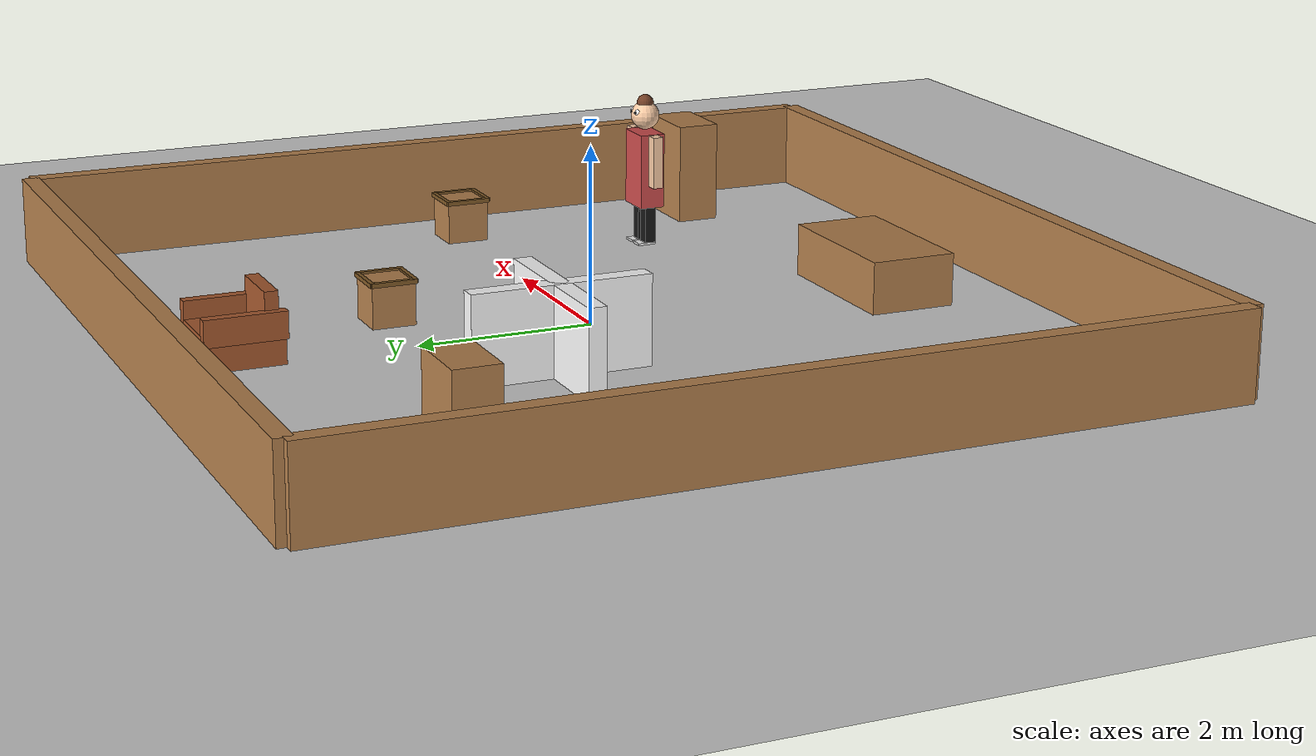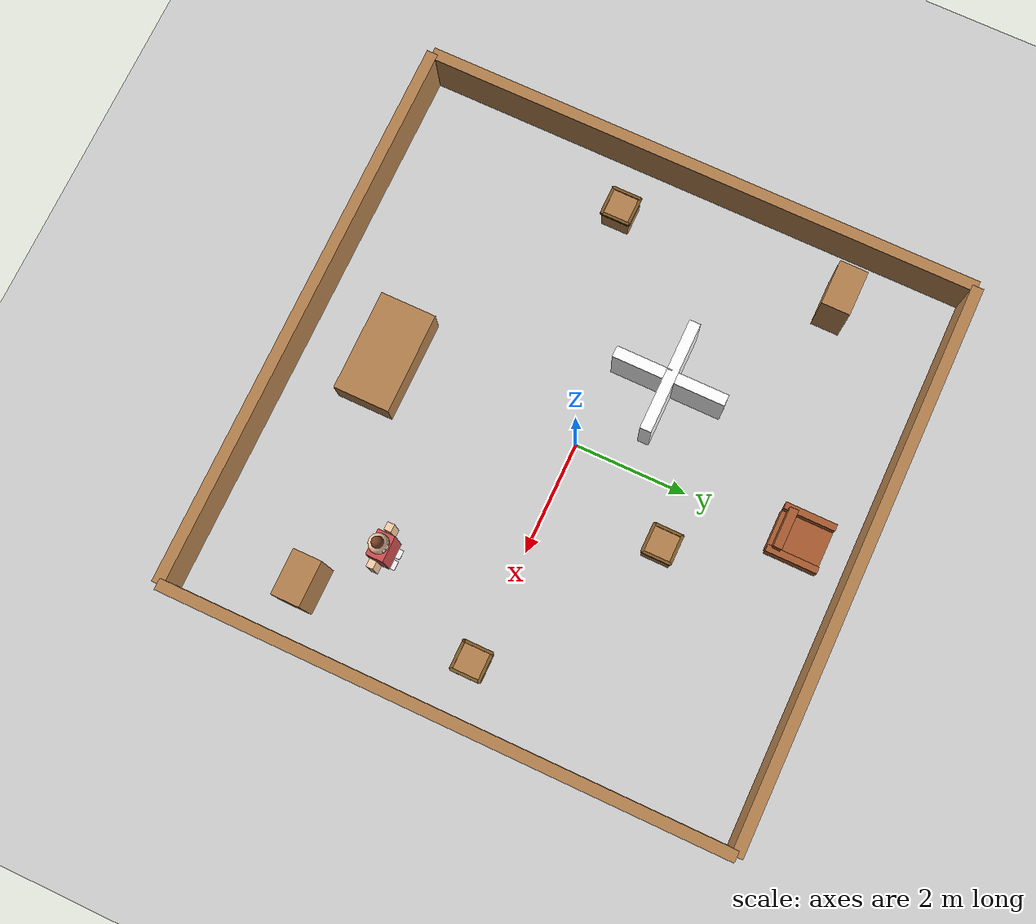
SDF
<?xml version="1.0"?>
<sdf version="1.6">
  <world name="10m_safe_world">

    <!-- 物理引擎配置（新增） -->
    <physics type="ode">
      <max_step_size>0.01</max_step_size>
      <real_time_update_rate>100</real_time_update_rate>
    </physics>

    <!-- 光照 -->
    <include>
      <uri>model://sun</uri>
    </include>

    <!-- 地面 10m×10m（添加摩擦参数） -->
    <model name="ground_plane">
      <static>true</static>
      <link name="link">
        <collision name="collision">
          <geometry>
            <plane>
              <normal>0 0 1</normal>
              <size>10 10</size>
            </plane>
          </geometry>
          <surface>
            <friction>
              <ode>
                <mu>1.0</mu>
                <mu2>1.0</mu2>
              </ode>
            </friction>
          </surface>
        </collision>
        <visual name="visual">
          <geometry>
            <plane>
              <normal>0 0 1</normal>
              <size>10 10</size>
            </plane>
          </geometry>
          <material>
            <script>
              <uri>file://media/materials/scripts/gazebo.material</uri>
              <name>Gazebo/Grey</name>
            </script>
          </material>
        </visual>
      </link>
    </model>

    <!-- 木质围墙（添加摩擦参数） -->
    <model name="fence">
      <static>true</static>
      <link name="link">
        <!-- 北墙 -->
        <collision name="n">
          <pose>0 5 0.5 0 0 0</pose>
          <geometry><box><size>10 0.2 1</size></box></geometry>
          <surface>
            <friction>
              <ode><mu>1.0</mu><mu2>1.0</mu2></ode>
            </friction>
          </surface>
        </collision>
        <visual name="nv">
          <pose>0 5 0.5 0 0 0</pose>
          <geometry><box><size>10 0.2 1</size></box></geometry>
          <material>
            <script>
              <uri>file://media/materials/scripts/gazebo.material</uri>
              <name>Gazebo/Wood</name>
            </script>
          </material>
        </visual>

        <!-- 南墙 -->
        <collision name="s">
          <pose>0 -5 0.5 0 0 0</pose>
          <geometry><box><size>10 0.2 1</size></box></geometry>
          <surface>
            <friction>
              <ode><mu>1.0</mu><mu2>1.0</mu2></ode>
            </friction>
          </surface>
        </collision>
        <visual name="sv">
          <pose>0 -5 0.5 0 0 0</pose>
          <geometry><box><size>10 0.2 1</size></box></geometry>
          <material>
            <script>
              <uri>file://media/materials/scripts/gazebo.material</uri>
              <name>Gazebo/Wood</name>
            </script>
          </material>
        </visual>

        <!-- 东墙 -->
        <collision name="e">
          <pose>5 0 0.5 0 0 0</pose>
          <geometry><box><size>0.2 10 1</size></box></geometry>
          <surface>
            <friction>
              <ode><mu>1.0</mu><mu2>1.0</mu2></ode>
            </friction>
          </surface>
        </collision>
        <visual name="ev">
          <pose>5 0 0.5 0 0 0</pose>
          <geometry><box><size>0.2 10 1</size></box></geometry>
          <material>
            <script>
              <uri>file://media/materials/scripts/gazebo.material</uri>
              <name>Gazebo/Wood</name>
            </script>
          </material>
        </visual>

        <!-- 西墙 -->
        <collision name="w">
          <pose>-5 0 0.5 0 0 0</pose>
          <geometry><box><size>0.2 10 1</size></box></geometry>
          <surface>
            <friction>
              <ode><mu>1.0</mu><mu2>1.0</mu2></ode>
            </friction>
          </surface>
        </collision>
        <visual name="wv">
          <pose>-5 0 0.5 0 0 0</pose>
          <geometry><box><size>0.2 10 1</size></box></geometry>
          <material>
            <script>
              <uri>file://media/materials/scripts/gazebo.material</uri>
              <name>Gazebo/Wood</name>
            </script>
          </material>
        </visual>
      </link>
    </model>

    <!-- ===================== 家具 ===================== -->

    <!-- 柜子1（添加摩擦） -->
    <model name="cab1">
      <static>true</static>
      <pose>-4 3 0.6 0 0 0</pose>
      <link name="link">
        <collision name="c">
          <geometry><box><size>0.8 0.5 1.2</size></box></geometry>
          <surface>
            <friction>
              <ode><mu>1.0</mu><mu2>1.0</mu2></ode>
            </friction>
          </surface>
        </collision>
        <visual name="v">
          <geometry><box><size>0.8 0.5 1.2</size></box></geometry>
          <material>
            <script>
              <uri>file://media/materials/scripts/gazebo.material</uri>
              <name>Gazebo/Wood</name>
            </script>
          </material>
        </visual>
      </link>
    </model>

    <!-- 柜子2（添加摩擦） -->
    <model name="cab2">
      <static>true</static>
      <pose>4 -3 0.6 0 0 0</pose>
      <link name="link">
        <collision name="c">
          <geometry><box><size>0.8 0.5 1.2</size></box></geometry>
          <surface>
            <friction>
              <ode><mu>1.0</mu><mu2>1.0</mu2></ode>
            </friction>
          </surface>
        </collision>
        <visual name="v">
          <geometry><box><size>0.8 0.5 1.2</size></box></geometry>
          <material>
            <script>
              <uri>file://media/materials/scripts/gazebo.material</uri>
              <name>Gazebo/Wood</name>
            </script>
          </material>
        </visual>
      </link>
    </model>

    <!-- 床（添加摩擦） -->
    <model name="bed">
      <static>true</static>
      <pose>0 -3.5 0.3 0 0 0</pose>
      <link name="link">
        <collision name="c">
          <geometry><box><size>1.8 1.0 0.6</size></box></geometry>
          <surface>
            <friction>
              <ode><mu>1.0</mu><mu2>1.0</mu2></ode>
            </friction>
          </surface>
        </collision>
        <visual name="v">
          <geometry><box><size>1.8 1.0 0.6</size></box></geometry>
          <material>
            <script>
              <uri>file://media/materials/scripts/gazebo.material</uri>
              <name>Gazebo/Wood</name>
            </script>
          </material>
        </visual>
      </link>
    </model>

    <!-- 沙发（添加摩擦，并补全坐垫碰撞体） -->
    <model name="sofa2">
      <static>true</static>
      <pose>0.0 4.0 0.3 0 0 1.57</pose>
      <link name="link">
        <collision name="base_collision">
          <geometry><box><size>0.9 0.7 0.4</size></box></geometry>
          <surface>
            <friction>
              <ode><mu>1.0</mu><mu2>1.0</mu2></ode>
            </friction>
          </surface>
        </collision>
        <visual name="base_visual">
          <geometry><box><size>0.9 0.7 0.4</size></box></geometry>
          <material>
            <ambient>0.55 0.27 0.12 1</ambient>
            <diffuse>0.65 0.35 0.18 1</diffuse>
            <specular>0.1 0.1 0.1 1</specular>
          </material>
        </visual>

        <collision name="back_collision">
          <pose>-0.3 0 0.35 0 0 0</pose>
          <geometry><box><size>0.15 0.7 0.5</size></box></geometry>
          <surface>
            <friction>
              <ode><mu>1.0</mu><mu2>1.0</mu2></ode>
            </friction>
          </surface>
        </collision>
        <visual name="back_visual">
          <pose>-0.3 0 0.35 0 0 0</pose>
          <geometry><box><size>0.15 0.7 0.5</size></box></geometry>
          <material>
            <ambient>0.55 0.27 0.12 1</ambient>
            <diffuse>0.65 0.35 0.18 1</diffuse>
            <specular>0.1 0.1 0.1 1</specular>
          </material>
        </visual>

        <collision name="left_arm_collision">
          <pose>0 -0.38 0.25 0 0 0</pose>
          <geometry><box><size>0.9 0.12 0.3</size></box></geometry>
          <surface>
            <friction>
              <ode><mu>1.0</mu><mu2>1.0</mu2></ode>
            </friction>
          </surface>
        </collision>
        <visual name="left_arm_visual">
          <pose>0 -0.38 0.25 0 0 0</pose>
          <geometry><box><size>0.9 0.12 0.3</size></box></geometry>
          <material>
            <ambient>0.55 0.27 0.12 1</ambient>
            <diffuse>0.65 0.35 0.18 1</diffuse>
          </material>
        </visual>

        <collision name="right_arm_collision">
          <pose>0 0.38 0.25 0 0 0</pose>
          <geometry><box><size>0.9 0.12 0.3</size></box></geometry>
          <surface>
            <friction>
              <ode><mu>1.0</mu><mu2>1.0</mu2></ode>
            </friction>
          </surface>
        </collision>
        <visual name="right_arm_visual">
          <pose>0 0.38 0.25 0 0 0</pose>
          <geometry><box><size>0.9 0.12 0.3</size></box></geometry>
          <material>
            <ambient>0.55 0.27 0.12 1</ambient>
            <diffuse>0.65 0.35 0.18 1</diffuse>
          </material>
        </visual>

        <!-- 新增坐垫碰撞体，与视觉对应 -->
        <collision name="cushion_collision">
          <pose>0.1 0 0.15 0 0 0</pose>
          <geometry><box><size>0.6 0.55 0.08</size></box></geometry>
          <surface>
            <friction>
              <ode><mu>1.0</mu><mu2>1.0</mu2></ode>
            </friction>
          </surface>
        </collision>
        <visual name="cushion_visual">
          <pose>0.1 0 0.15 0 0 0</pose>
          <geometry><box><size>0.6 0.55 0.08</size></box></geometry>
          <material>
            <ambient>0.65 0.35 0.18 1</ambient>
            <diffuse>0.75 0.45 0.25 1</diffuse>
          </material>
        </visual>
      </link>
    </model>

    <!-- 板条箱 crate3（添加摩擦） -->
    <model name="crate3">
      <static>true</static>
      <pose>1.0 2.0 0.25 0 0 0</pose>
      <link name="link">
        <collision name="collision">
          <geometry><box><size>0.5 0.5 0.5</size></box></geometry>
          <surface>
            <friction>
              <ode><mu>1.0</mu><mu2>1.0</mu2></ode>
            </friction>
          </surface>
        </collision>
        <visual name="visual">
          <geometry><box><size>0.5 0.5 0.5</size></box></geometry>
          <material>
            <ambient>0.6 0.4 0.2 1</ambient>
            <diffuse>0.7 0.5 0.3 1</diffuse>
            <specular>0.1 0.1 0.1 1</specular>
          </material>
        </visual>
        <visual name="edge1">
          <pose>0.25 0 0.25 0 0 0</pose>
          <geometry><box><size>0.05 0.52 0.05</size></box></geometry>
          <material>
            <ambient>0.4 0.25 0.1 1</ambient>
            <diffuse>0.5 0.35 0.15 1</diffuse>
          </material>
        </visual>
        <visual name="edge2">
          <pose>-0.25 0 0.25 0 0 0</pose>
          <geometry><box><size>0.05 0.52 0.05</size></box></geometry>
          <material>
            <ambient>0.4 0.25 0.1 1</ambient>
            <diffuse>0.5 0.35 0.15 1</diffuse>
          </material>
        </visual>
        <visual name="edge3">
          <pose>0 0.25 0.25 0 0 0</pose>
          <geometry><box><size>0.52 0.05 0.05</size></box></geometry>
          <material>
            <ambient>0.4 0.25 0.1 1</ambient>
            <diffuse>0.5 0.35 0.15 1</diffuse>
          </material>
        </visual>
        <visual name="edge4">
          <pose>0 -0.25 0.25 0 0 0</pose>
          <geometry><box><size>0.52 0.05 0.05</size></box></geometry>
          <material>
            <ambient>0.4 0.25 0.1 1</ambient>
            <diffuse>0.5 0.35 0.15 1</diffuse>
          </material>
        </visual>
      </link>
    </model>

    <!-- 板条箱 crate2（添加摩擦） -->
    <model name="crate2">
      <static>true</static>
      <pose>4.0 0.0 0.25 0 0 0</pose>
      <link name="link">
        <collision name="collision">
          <geometry><box><size>0.5 0.5 0.5</size></box></geometry>
          <surface>
            <friction>
              <ode><mu>1.0</mu><mu2>1.0</mu2></ode>
            </friction>
          </surface>
        </collision>
        <visual name="visual">
          <geometry><box><size>0.5 0.5 0.5</size></box></geometry>
          <material>
            <ambient>0.6 0.4 0.2 1</ambient>
            <diffuse>0.7 0.5 0.3 1</diffuse>
            <specular>0.1 0.1 0.1 1</specular>
          </material>
        </visual>
        <visual name="edge1">
          <pose>0.25 0 0.25 0 0 0</pose>
          <geometry><box><size>0.05 0.52 0.05</size></box></geometry>
          <material>
            <ambient>0.4 0.25 0.1 1</ambient>
            <diffuse>0.5 0.35 0.15 1</diffuse>
          </material>
        </visual>
        <visual name="edge2">
          <pose>-0.25 0 0.25 0 0 0</pose>
          <geometry><box><size>0.05 0.52 0.05</size></box></geometry>
          <material>
            <ambient>0.4 0.25 0.1 1</ambient>
            <diffuse>0.5 0.35 0.15 1</diffuse>
          </material>
        </visual>
        <visual name="edge3">
          <pose>0 0.25 0.25 0 0 0</pose>
          <geometry><box><size>0.52 0.05 0.05</size></box></geometry>
          <material>
            <ambient>0.4 0.25 0.1 1</ambient>
            <diffuse>0.5 0.35 0.15 1</diffuse>
          </material>
        </visual>
        <visual name="edge4">
          <pose>0 -0.25 0.25 0 0 0</pose>
          <geometry><box><size>0.52 0.05 0.05</size></box></geometry>
          <material>
            <ambient>0.4 0.25 0.1 1</ambient>
            <diffuse>0.5 0.35 0.15 1</diffuse>
          </material>
        </visual>
      </link>
    </model>

    <!-- 板条箱 crate1（添加摩擦） -->
    <model name="crate1">
      <static>true</static>
      <pose>-4.0 -1.0 0.25 0 0 0</pose>
      <link name="link">
        <collision name="collision">
          <geometry><box><size>0.5 0.5 0.5</size></box></geometry>
          <surface>
            <friction>
              <ode><mu>1.0</mu><mu2>1.0</mu2></ode>
            </friction>
          </surface>
        </collision>
        <visual name="visual">
          <geometry><box><size>0.5 0.5 0.5</size></box></geometry>
          <material>
            <ambient>0.6 0.4 0.2 1</ambient>
            <diffuse>0.7 0.5 0.3 1</diffuse>
            <specular>0.1 0.1 0.1 1</specular>
          </material>
        </visual>
        <visual name="edge1">
          <pose>0.25 0 0.25 0 0 0</pose>
          <geometry><box><size>0.05 0.52 0.05</size></box></geometry>
          <material>
            <ambient>0.4 0.25 0.1 1</ambient>
            <diffuse>0.5 0.35 0.15 1</diffuse>
          </material>
        </visual>
        <visual name="edge2">
          <pose>-0.25 0 0.25 0 0 0</pose>
          <geometry><box><size>0.05 0.52 0.05</size></box></geometry>
          <material>
            <ambient>0.4 0.25 0.1 1</ambient>
            <diffuse>0.5 0.35 0.15 1</diffuse>
          </material>
        </visual>
        <visual name="edge3">
          <pose>0 0.25 0.25 0 0 0</pose>
          <geometry><box><size>0.52 0.05 0.05</size></box></geometry>
          <material>
            <ambient>0.4 0.25 0.1 1</ambient>
            <diffuse>0.5 0.35 0.15 1</diffuse>
          </material>
        </visual>
        <visual name="edge4">
          <pose>0 -0.25 0.25 0 0 0</pose>
          <geometry><box><size>0.52 0.05 0.05</size></box></geometry>
          <material>
            <ambient>0.4 0.25 0.1 1</ambient>
            <diffuse>0.5 0.35 0.15 1</diffuse>
          </material>
        </visual>
      </link>
    </model>

    <!-- ===================== 白色十字架墙体（新增） ===================== -->
    <model name="cross_wall">
      <static>true</static>
      <!-- 放置在第二象限，中心 (-2.5, 2.5) 地面处 -->
      <pose>-1.5 1.0 0.0 0 0 0</pose>
      <link name="link">
        <!-- 水平臂（沿 X 方向） -->
        <collision name="horizontal_collision">
          <pose>0 0 0.5 0 0 0</pose>
          <geometry><box><size>2.0 0.2 1.0</size></box></geometry>
          <surface>
            <friction>
              <ode><mu>1.0</mu><mu2>1.0</mu2></ode>
            </friction>
          </surface>
        </collision>
        <visual name="horizontal_visual">
          <pose>0 0 0.5 0 0 0</pose>
          <geometry><box><size>2.0 0.2 1.0</size></box></geometry>
          <material>
            <ambient>1 1 1 1</ambient>
            <diffuse>1 1 1 1</diffuse>
            <specular>0.1 0.1 0.1 1</specular>
          </material>
        </visual>

        <!-- 垂直臂（沿 Y 方向） -->
        <collision name="vertical_collision">
          <pose>0 0 0.5 0 0 0</pose>
          <geometry><box><size>0.2 2.0 1.0</size></box></geometry>
          <surface>
            <friction>
              <ode><mu>1.0</mu><mu2>1.0</mu2></ode>
            </friction>
          </surface>
        </collision>
        <visual name="vertical_visual">
          <pose>0 0 0.5 0 0 0</pose>
          <geometry><box><size>0.2 2.0 1.0</size></box></geometry>
          <material>
            <ambient>1 1 1 1</ambient>
            <diffuse>1 1 1 1</diffuse>
            <specular>0.1 0.1 0.1 1</specular>
          </material>
        </visual>
      </link>
    </model>
	  <!-- ===================== 动态行人2（第四象限，红色上衣） ===================== -->
  <model name="realistic_pedestrian2">
    <static>false</static>
    <pose>3 -2 1.02 0 0 0</pose>
    <link name="body">
      <collision name="torso_collision">
        <pose>0 0 -0.12 0 0 0</pose>
        <geometry><box><size>0.45 0.30 0.90</size></box></geometry>
        <surface><contact><ode/></contact><bounce/><friction><ode/></friction></surface>
        <laser_retro>1</laser_retro>
        <max_contacts>10</max_contacts>
      </collision>
      <visual name="torso_visual">
        <pose>0 0 -0.12 0 0 0</pose>
        <cast_shadows>true</cast_shadows>
        <geometry><box><size>0.45 0.30 0.90</size></box></geometry>
        <material>
          <ambient>0.7 0.2 0.2 1</ambient>
          <diffuse>0.8 0.3 0.3 1</diffuse>
          <specular>0.1 0.1 0.1 1</specular>
        </material>
      </visual>
      <collision name="head_collision">
        <pose>0 0 0.53 0 0 0</pose>
        <geometry><sphere><radius>0.17</radius></sphere></geometry>
        <surface><contact><ode/></contact><bounce/><friction><ode/></friction></surface>
        <laser_retro>1</laser_retro>
        <max_contacts>10</max_contacts>
      </collision>
      <visual name="head_visual">
        <pose>0 0 0.53 0 0 0</pose>
        <cast_shadows>true</cast_shadows>
        <geometry><sphere><radius>0.17</radius></sphere></geometry>
        <material>
          <ambient>0.95 0.75 0.60 1</ambient>
          <diffuse>0.98 0.80 0.65 1</diffuse>
          <specular>0.2 0.2 0.2 1</specular>
        </material>
      </visual>
      <visual name="hair_visual">
        <pose>0 0 0.68 0 0 0</pose>
        <cast_shadows>true</cast_shadows>
        <geometry><sphere><radius>0.10</radius></sphere></geometry>
        <material>
          <ambient>0.4 0.2 0.1 1</ambient>
          <diffuse>0.45 0.25 0.15 1</diffuse>
          <specular>0.2 0.2 0.2 1</specular>
        </material>
      </visual>
      <collision name="left_leg_collision">
        <pose>-0.10 0 -0.72 0 0 0</pose>
        <geometry><box><size>0.14 0.14 0.70</size></box></geometry>
        <laser_retro>1</laser_retro>
      </collision>
      <visual name="left_leg_visual">
        <pose>-0.10 0 -0.72 0 0 0</pose>
        <cast_shadows>true</cast_shadows>
        <geometry><box><size>0.14 0.14 0.70</size></box></geometry>
        <material>
          <ambient>0.05 0.05 0.05 1</ambient>
          <diffuse>0.08 0.08 0.08 1</diffuse>
          <specular>0.05 0.05 0.05 1</specular>
        </material>
      </visual>
      <collision name="right_leg_collision">
        <pose>0.10 0 -0.72 0 0 0</pose>
        <geometry><box><size>0.14 0.14 0.70</size></box></geometry>
        <laser_retro>1</laser_retro>
      </collision>
      <visual name="right_leg_visual">
        <pose>0.10 0 -0.72 0 0 0</pose>
        <cast_shadows>true</cast_shadows>
        <geometry><box><size>0.14 0.14 0.70</size></box></geometry>
        <material>
          <ambient>0.05 0.05 0.05 1</ambient>
          <diffuse>0.08 0.08 0.08 1</diffuse>
          <specular>0.05 0.05 0.05 1</specular>
        </material>
      </visual>
      <collision name="left_arm_collision">
        <pose>-0.32 0 0.02 0 0 0</pose>
        <geometry><box><size>0.14 0.12 0.62</size></box></geometry>
        <laser_retro>1</laser_retro>
      </collision>
      <visual name="left_arm_visual">
        <pose>-0.32 0 0.02 0 0 0</pose>
        <cast_shadows>true</cast_shadows>
        <geometry><box><size>0.14 0.12 0.62</size></box></geometry>
        <material>
          <ambient>0.95 0.75 0.60 1</ambient>
          <diffuse>0.98 0.80 0.65 1</diffuse>
          <specular>0.1 0.1 0.1 1</specular>
        </material>
      </visual>
      <collision name="right_arm_collision">
        <pose>0.32 0 0.02 0 0 0</pose>
        <geometry><box><size>0.14 0.12 0.62</size></box></geometry>
        <laser_retro>1</laser_retro>
      </collision>
      <visual name="right_arm_visual">
        <pose>0.32 0 0.02 0 0 0</pose>
        <cast_shadows>true</cast_shadows>
        <geometry><box><size>0.14 0.12 0.62</size></box></geometry>
        <material>
          <ambient>0.95 0.75 0.60 1</ambient>
          <diffuse>0.98 0.80 0.65 1</diffuse>
          <specular>0.1 0.1 0.1 1</specular>
        </material>
      </visual>
      <visual name="left_shoe_visual">
        <pose>-0.10 0.05 -1.05 0 0 0</pose>
        <cast_shadows>true</cast_shadows>
        <geometry><box><size>0.16 0.22 0.08</size></box></geometry>
        <material>
          <ambient>0.9 0.9 0.9 1</ambient>
          <diffuse>0.95 0.95 0.95 1</diffuse>
          <specular>0.3 0.3 0.3 1</specular>
        </material>
      </visual>
      <visual name="right_shoe_visual">
        <pose>0.10 0.05 -1.05 0 0 0</pose>
        <cast_shadows>true</cast_shadows>
        <geometry><box><size>0.16 0.22 0.08</size></box></geometry>
        <material>
          <ambient>0.9 0.9 0.9 1</ambient>
          <diffuse>0.95 0.95 0.95 1</diffuse>
          <specular>0.3 0.3 0.3 1</specular>
        </material>
      </visual>
      <visual name="left_eye_white">
        <pose>-0.06 0.12 0.58 0 0 0</pose>
        <geometry><sphere><radius>0.04</radius></sphere></geometry>
        <material><ambient>1 1 1 1</ambient><diffuse>1 1 1 1</diffuse></material>
      </visual>
      <visual name="right_eye_white">
        <pose>0.06 0.12 0.58 0 0 0</pose>
        <geometry><sphere><radius>0.04</radius></sphere></geometry>
        <material><ambient>1 1 1 1</ambient><diffuse>1 1 1 1</diffuse></material>
      </visual>
      <visual name="left_eye_pupil">
        <pose>-0.06 0.15 0.58 0 0 0</pose>
        <geometry><sphere><radius>0.02</radius></sphere></geometry>
        <material><ambient>0 0 0 1</ambient><diffuse>0 0 0 1</diffuse></material>
      </visual>
      <visual name="right_eye_pupil">
        <pose>0.06 0.15 0.58 0 0 0</pose>
        <geometry><sphere><radius>0.02</radius></sphere></geometry>
        <material><ambient>0 0 0 1</ambient><diffuse>0 0 0 1</diffuse></material>
      </visual>
      <visual name="mouth">
        <pose>0 0.10 0.48 0.1 0 0</pose>
        <geometry><box><size>0.08 0.02 0.02</size></box></geometry>
        <material><ambient>0.6 0.2 0.2 1</ambient><diffuse>0.6 0.2 0.2 1</diffuse></material>
      </visual>
    </link>
    <plugin name="pedestrian_patrol2" filename="libpedestrian_patrol_plugin.so">
      <start>3 -1 1.02 0 0 0</start>
      <end>0 -2 1.02 0 0 0</end>
      <speed>0.3</speed>
      <pause>2.5</pause>
    </plugin>
  </model>
    <!-- 俯视视角 -->
    <gui>
      <camera name="view">
        <pose>0 0 12 0 1.5708 1.5708</pose>
      </camera>
    </gui>

  </world>
</sdf>
